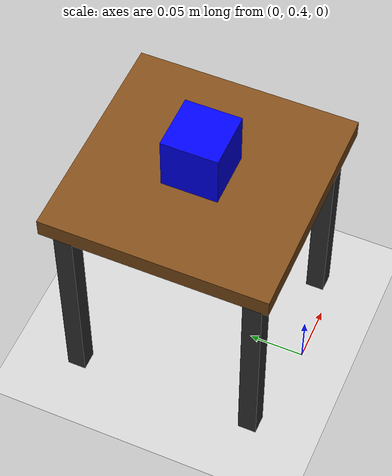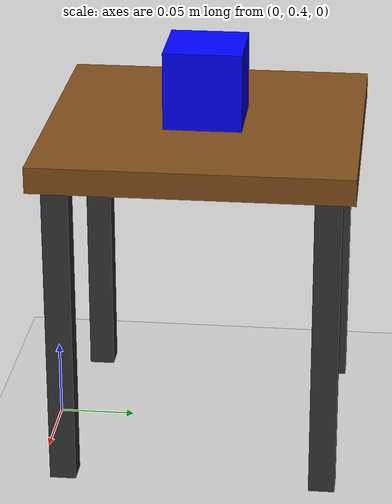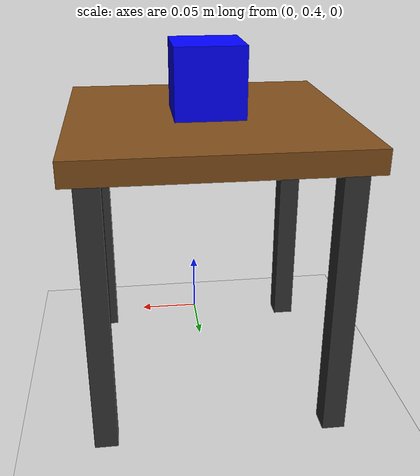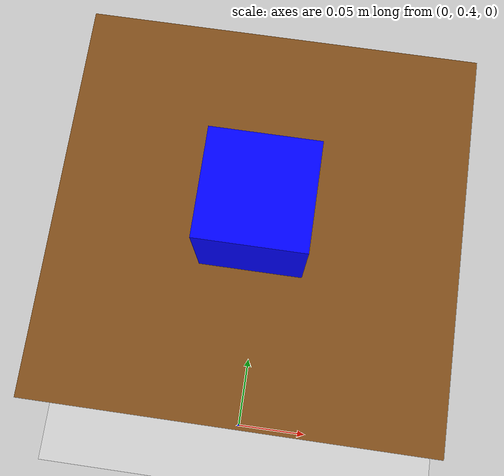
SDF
<?xml version="1.0" ?>
<sdf version="1.8">
    <world name='modifiedempty'>

        <plugin
            filename="libignition-gazebo-physics-system.so"
            name="ignition::gazebo::systems::Physics">
        </plugin>
        <plugin
            filename="libignition-gazebo-user-commands-system.so"
            name="ignition::gazebo::systems::UserCommands">
        </plugin>
        <plugin
            filename="libignition-gazebo-scene-broadcaster-system.so"
            name="ignition::gazebo::systems::SceneBroadcaster">
        </plugin>

        <scene>
            <ambient>0.4 0.4 0.4 1</ambient>
            <background>0.7 0.7 0.7 1</background>
            <sky>
                <clouds>
                    <speed>12</speed>
                    <direction>1.57</direction>
                    <humidity>0.5</humidity>
                </clouds>
                <ambient>0.6 0.8 1.0 1.0</ambient>
                <blue_horizon>0.8 0.9 1.0 1.0</blue_horizon>
                <blue_sky>0.5 0.7 0.9 1.0</blue_sky>
            </sky>
        </scene>

        <light type="directional" name="sun">
            <cast_shadows>true</cast_shadows>
            <pose>0 0 10 0 0 0</pose>
            <diffuse>0.8 0.8 0.8 1</diffuse>
            <specular>0.2 0.2 0.2 1</specular>
            <direction>-0.5 0.1 -0.9</direction>
        </light>

        <model name="ground_plane">
            <static>true</static>
            <link name="link">
                <collision name="collision">
                    <geometry>
                        <plane>
                            <normal>0 0 1</normal>
                            <size>100 100</size>
                        </plane>
                    </geometry>
                </collision>
                <visual name="visual">
                    <geometry>
                        <plane>
                            <normal>0 0 1</normal>
                            <size>100 100</size>
                        </plane>
                    </geometry>
                    <material>
                        <ambient>0.8 0.8 0.8 1</ambient>
                        <diffuse>0.8 0.8 0.8 1</diffuse>
                        <specular>0.8 0.8 0.8 1</specular>
                    </material>
                </visual>
            </link>
        </model>

        <model name="mini_table">
            <static>true</static>
            <pose>0 0.5 0 0 0 0</pose>
            <link name="link">

                <visual name="top_visual">
                    <pose>0 0 0.20835 0 0 0</pose>
                    <geometry>
                        <box>
                            <size>0.2 0.2 0.0167</size>
                        </box>
                    </geometry>
                    <material>
                        <ambient>0.5 0.3 0.1 1</ambient>
                        <diffuse>0.5 0.3 0.1 1</diffuse>
                    </material>
                </visual>
                <collision name="top_collision">
                    <pose>0 0 0.20835 0 0 0</pose>
                    <geometry>
                        <box>
                            <size>0.2 0.2 0.0167</size>
                        </box>
                    </geometry>
                </collision>

                <visual name="leg1_visual">
                    <pose>0.0833 0.0833 0.1 0 0 0</pose>
                    <geometry><box><size>0.0167 0.0167 0.2</size></box></geometry>
                    <material><ambient>0.2 0.2 0.2 1</ambient><diffuse>0.2 0.2 0.2 1</diffuse></material>
                </visual>
                <collision name="leg1_collision">
                    <pose>0.0833 0.0833 0.1 0 0 0</pose>
                    <geometry><box><size>0.0167 0.0167 0.2</size></box></geometry>
                </collision>

                <visual name="leg2_visual">
                    <pose>0.0833 -0.0833 0.1 0 0 0</pose>
                    <geometry><box><size>0.0167 0.0167 0.2</size></box></geometry>
                    <material><ambient>0.2 0.2 0.2 1</ambient><diffuse>0.2 0.2 0.2 1</diffuse></material>
                </visual>
                <collision name="leg2_collision">
                    <pose>0.0833 -0.0833 0.1 0 0 0</pose>
                    <geometry><box><size>0.0167 0.0167 0.2</size></box></geometry>
                </collision>

                <visual name="leg3_visual">
                    <pose>-0.0833 0.0833 0.1 0 0 0</pose>
                    <geometry><box><size>0.0167 0.0167 0.2</size></box></geometry>
                    <material><ambient>0.2 0.2 0.2 1</ambient><diffuse>0.2 0.2 0.2 1</diffuse></material>
                </visual>
                <collision name="leg3_collision">
                    <pose>-0.0833 0.0833 0.1 0 0 0</pose>
                    <geometry><box><size>0.0167 0.0167 0.2</size></box></geometry>
                </collision>

                <visual name="leg4_visual">
                    <pose>-0.0833 -0.0833 0.1 0 0 0</pose>
                    <geometry><box><size>0.0167 0.0167 0.2</size></box></geometry>
                    <material><ambient>0.2 0.2 0.2 1</ambient><diffuse>0.2 0.2 0.2 1</diffuse></material>
                </visual>
                <collision name="leg4_collision">
                    <pose>-0.0833 -0.0833 0.1 0 0 0</pose>
                    <geometry><box><size>0.0167 0.0167 0.2</size></box></geometry>
                </collision>
            </link>
        </model>

        <model name="blue_cube">
            <pose>0 0.5 0.2417 0 0 0</pose>
            <link name="link">
                <inertial>
                    <mass>0.1</mass>
                    <inertia>
                        <ixx>0.0000416</ixx> <ixy>0</ixy> <ixz>0</ixz>
                        <iyy>0.0000416</iyy> <iyz>0</iyz> <izz>0.0000416</izz>
                    </inertia>
                </inertial>
                <collision name="collision">
                    <geometry>
                        <box>
                            <size>0.05 0.05 0.05</size>
                        </box>
                    </geometry>
                </collision>
                <visual name="visual">
                    <geometry>
                        <box>
                            <size>0.05 0.05 0.05</size>
                        </box>
                    </geometry>
                    <material>
                        <ambient>0 0 1 1</ambient>
                        <diffuse>0 0 1 1</diffuse>
                        <specular>0.1 0.1 0.1 1</specular>
                    </material>
                </visual>
            </link>
        </model>
    </world>
</sdf>
